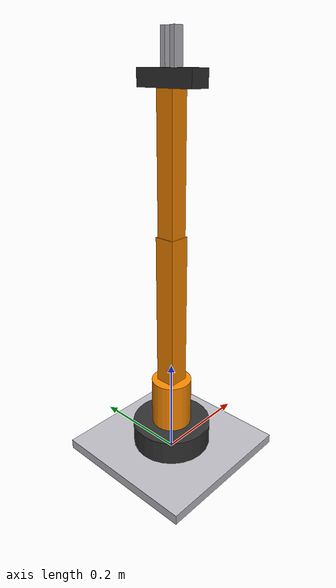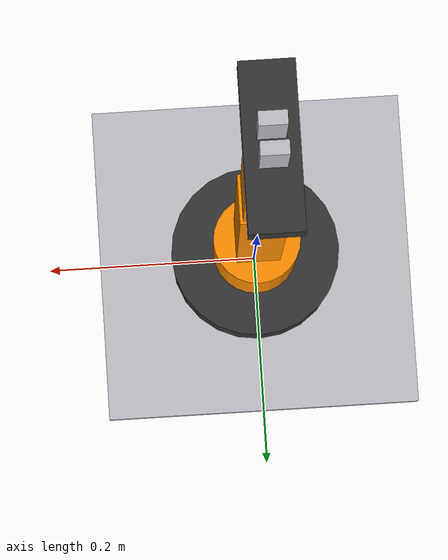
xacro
<?xml version="1.0"?>
<!-- A 3-DOF robotic arm with a 2-finger gripper on a fixed stand -->
<robot name="arm3_gripper" xmlns:xacro="http://www.ros.org/wiki/xacro">
  <xacro:include filename="../../common/urdf/macros.xacro"/>
  <xacro:include filename="../../common/urdf/arm3_macro.xacro"/>
  <link name="base_link">
    <visual><origin xyz="0 0 0.01"/><geometry><box size="0.30 0.30 0.02"/></geometry><material name="light_grey"/></visual>
    <collision><origin xyz="0 0 0.01"/><geometry><box size="0.30 0.30 0.02"/></geometry></collision>
    <xacro:box_inertia m="3.0" x="0.30" y="0.30" z="0.02" xyz="0 0 0.01"/>
  </link>
  <xacro:arm3 prefix="" parent="base_link" xyz="0 0 0.02"/>
</robot>

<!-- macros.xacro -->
<!-- Shared materials and inertia macros (solid box, cylinder along Z, sphere) -->
<robot xmlns:xacro="http://www.ros.org/wiki/xacro">
  <material name="orange"><color rgba="1.0 0.55 0.0 1.0"/></material>
  <material name="dark_grey"><color rgba="0.2 0.2 0.2 1.0"/></material>
  <material name="light_grey"><color rgba="0.75 0.75 0.78 1.0"/></material>
  <material name="sky_blue"><color rgba="0.3 0.7 1.0 1.0"/></material>
  <material name="green"><color rgba="0.2 0.75 0.35 1.0"/></material>
  <material name="red"><color rgba="0.9 0.2 0.2 1.0"/></material>
  <material name="white"><color rgba="0.95 0.95 0.95 1.0"/></material>
  <material name="prop_blue"><color rgba="0.3 0.6 1.0 0.6"/></material>

  <xacro:macro name="box_inertia" params="m x y z xyz:='0 0 0' rpy:='0 0 0'">
    <inertial>
      <origin xyz="${xyz}" rpy="${rpy}"/>
      <mass value="${m}"/>
      <inertia ixx="${m*(y*y+z*z)/12}" ixy="0" ixz="0" iyy="${m*(x*x+z*z)/12}" iyz="0" izz="${m*(x*x+y*y)/12}"/>
    </inertial>
  </xacro:macro>
  <xacro:macro name="cylinder_inertia" params="m r h xyz:='0 0 0' rpy:='0 0 0'">
    <inertial>
      <origin xyz="${xyz}" rpy="${rpy}"/>
      <mass value="${m}"/>
      <inertia ixx="${m*(3*r*r+h*h)/12}" ixy="0" ixz="0" iyy="${m*(3*r*r+h*h)/12}" iyz="0" izz="${m*r*r/2}"/>
    </inertial>
  </xacro:macro>
  <xacro:macro name="sphere_inertia" params="m r xyz:='0 0 0'">
    <inertial>
      <origin xyz="${xyz}"/>
      <mass value="${m}"/>
      <inertia ixx="${2*m*r*r/5}" ixy="0" ixz="0" iyy="${2*m*r*r/5}" iyz="0" izz="${2*m*r*r/5}"/>
    </inertial>
  </xacro:macro>
</robot>

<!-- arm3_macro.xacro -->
<!-- A 3-DOF arm (yaw, shoulder, elbow) with a 2-finger gripper. The right finger MIMICS the left one. -->
<robot xmlns:xacro="http://www.ros.org/wiki/xacro">
  <xacro:macro name="arm3" params="prefix parent xyz:='0 0 0'">
    <joint name="${prefix}mount_joint" type="fixed">
      <parent link="${parent}"/><child link="${prefix}arm_base_link"/><origin xyz="${xyz}"/>
    </joint>
    <link name="${prefix}arm_base_link">
      <visual><origin xyz="0 0 0.025"/><geometry><cylinder radius="0.08" length="0.05"/></geometry><material name="dark_grey"/></visual>
      <collision><origin xyz="0 0 0.025"/><geometry><cylinder radius="0.08" length="0.05"/></geometry></collision>
      <xacro:cylinder_inertia m="1.0" r="0.08" h="0.05" xyz="0 0 0.025"/>
    </link>
    <joint name="${prefix}base_yaw_joint" type="revolute">
      <parent link="${prefix}arm_base_link"/><child link="${prefix}turret_link"/>
      <origin xyz="0 0 0.05"/><axis xyz="0 0 1"/><limit lower="-3.14" upper="3.14" effort="10" velocity="1.0"/>
    </joint>
    <link name="${prefix}turret_link">
      <visual><origin xyz="0 0 0.05"/><geometry><cylinder radius="0.04" length="0.10"/></geometry><material name="orange"/></visual>
      <collision><origin xyz="0 0 0.05"/><geometry><cylinder radius="0.04" length="0.10"/></geometry></collision>
      <xacro:cylinder_inertia m="0.3" r="0.04" h="0.10" xyz="0 0 0.05"/>
    </link>
    <joint name="${prefix}shoulder_joint" type="revolute">
      <parent link="${prefix}turret_link"/><child link="${prefix}upper_arm_link"/>
      <origin xyz="0 0 0.10"/><axis xyz="0 1 0"/><limit lower="-1.57" upper="1.57" effort="10" velocity="1.0"/>
    </joint>
    <link name="${prefix}upper_arm_link">
      <visual><origin xyz="0 0 0.15"/><geometry><box size="0.04 0.04 0.30"/></geometry><material name="orange"/></visual>
      <collision><origin xyz="0 0 0.15"/><geometry><box size="0.04 0.04 0.30"/></geometry></collision>
      <xacro:box_inertia m="0.4" x="0.04" y="0.04" z="0.30" xyz="0 0 0.15"/>
    </link>
    <joint name="${prefix}elbow_joint" type="revolute">
      <parent link="${prefix}upper_arm_link"/><child link="${prefix}forearm_link"/>
      <origin xyz="0 0 0.30"/><axis xyz="0 1 0"/><limit lower="-2.0" upper="2.0" effort="8" velocity="1.0"/>
    </joint>
    <link name="${prefix}forearm_link">
      <visual><origin xyz="0 0 0.125"/><geometry><box size="0.035 0.035 0.25"/></geometry><material name="orange"/></visual>
      <collision><origin xyz="0 0 0.125"/><geometry><box size="0.035 0.035 0.25"/></geometry></collision>
      <xacro:box_inertia m="0.3" x="0.035" y="0.035" z="0.25" xyz="0 0 0.125"/>
    </link>
    <joint name="${prefix}gripper_mount_joint" type="fixed">
      <parent link="${prefix}forearm_link"/><child link="${prefix}gripper_base_link"/><origin xyz="0 0 0.25"/>
    </joint>
    <link name="${prefix}gripper_base_link">
      <visual><origin xyz="0 0 0.015"/><geometry><box size="0.04 0.12 0.03"/></geometry><material name="dark_grey"/></visual>
      <collision><origin xyz="0 0 0.015"/><geometry><box size="0.04 0.12 0.03"/></geometry></collision>
      <xacro:box_inertia m="0.1" x="0.04" y="0.12" z="0.03" xyz="0 0 0.015"/>
    </link>
    <xacro:macro name="finger" params="side sign">
      <joint name="${prefix}${side}_finger_joint" type="prismatic">
        <parent link="${prefix}gripper_base_link"/><child link="${prefix}${side}_finger_link"/>
        <origin xyz="0 ${sign*0.01} 0.03"/><axis xyz="0 ${sign} 0"/><limit lower="0" upper="0.04" effort="5" velocity="0.05"/>
        <xacro:if value="${sign &lt; 0}"><mimic joint="${prefix}left_finger_joint" multiplier="1" offset="0"/></xacro:if>
      </joint>
      <link name="${prefix}${side}_finger_link">
        <visual><origin xyz="0 0 0.03"/><geometry><box size="0.02 0.01 0.06"/></geometry><material name="light_grey"/></visual>
        <collision><origin xyz="0 0 0.03"/><geometry><box size="0.02 0.01 0.06"/></geometry></collision>
        <xacro:box_inertia m="0.02" x="0.02" y="0.01" z="0.06" xyz="0 0 0.03"/>
      </link>
    </xacro:macro>
    <xacro:finger side="left" sign="1"/>
    <xacro:finger side="right" sign="-1"/>
  </xacro:macro>
</robot>
